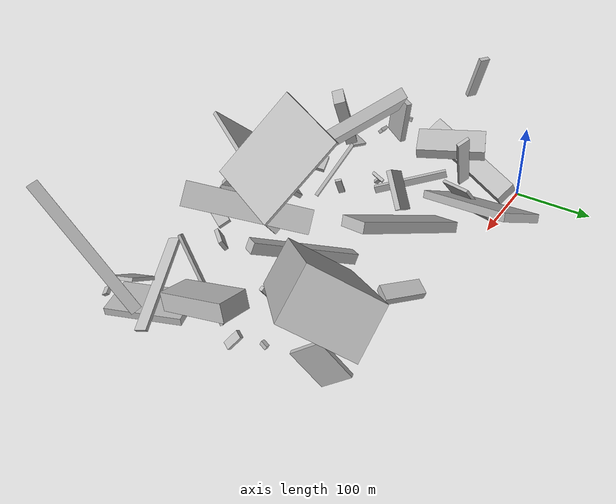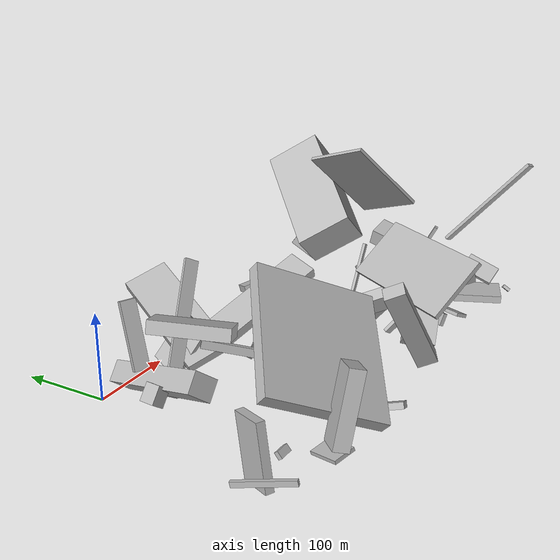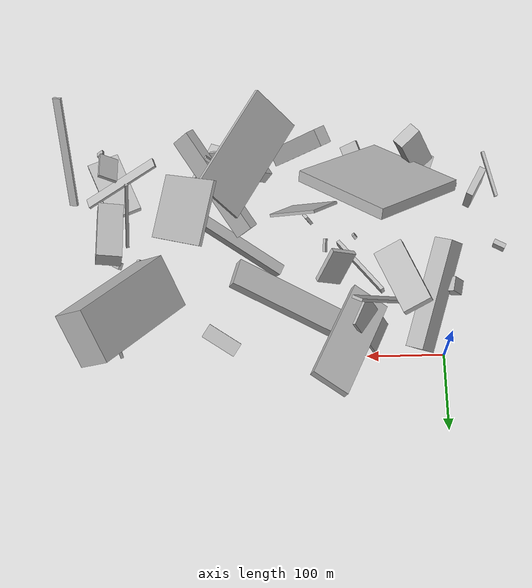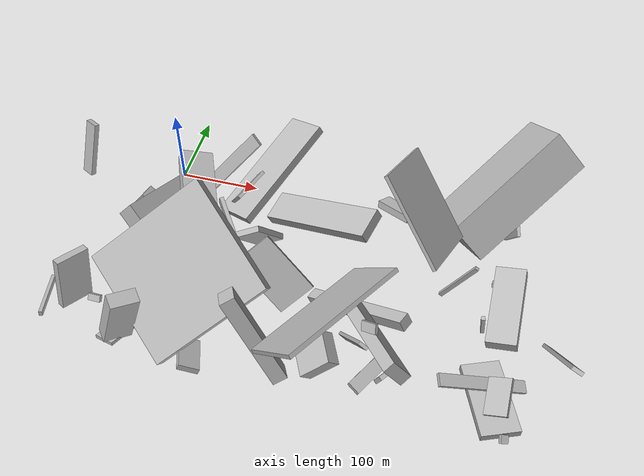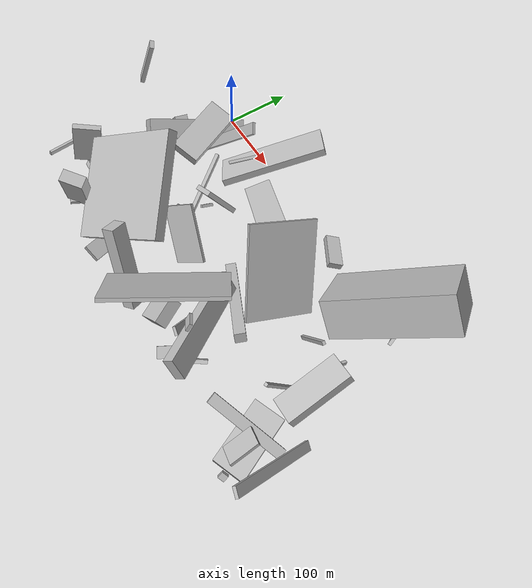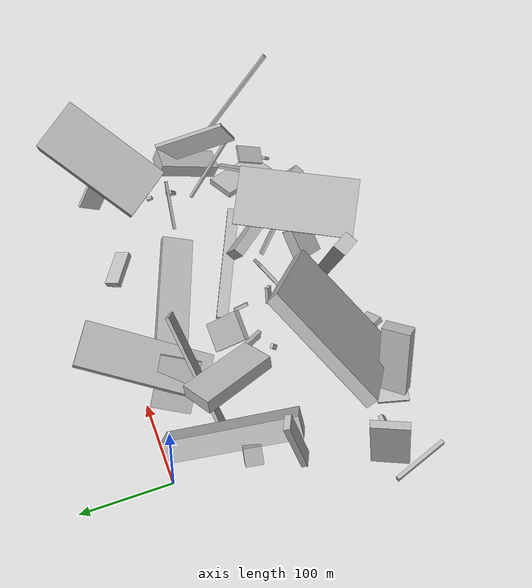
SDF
<sdf version="1.6">
 <world name="default">
  <model name="building_1">
   <static>0</static>
   <pose>274.08336194904683 -231.3044531886416 53.898716133199905 -2.457455952548785 -0.8422975858715522 -1.0340371913870465</pose>
   <link name="link">
    <gravity>0</gravity>
    <pose>0 0 5.5 0 0 0</pose>
    <collision name="collision"><geometry><box><size>90 4 11</size></box></geometry></collision>
    <visual name="visual">
     <cast_shadows>0</cast_shadows>
     <geometry><box><size>90 4 11</size></box></geometry>
     <material>
      <script>
       <uri>model://HANNAS_wall/materials/scripts</uri>
       <uri>model://HANNAS_wall/materials/textures</uri>
       <name>vrc/HANNAS_wall</name>
      </script>
     </material>
    </visual>
   </link>
  </model>
  <model name="building_3">
   <static>0</static>
   <pose>80.08499094555401 -218.43095466384744 86.9659670921636 -2.6320909215621855 -0.5577477662474117 0.6017697793955252</pose>
   <link name="link">
    <gravity>0</gravity>
    <pose>0 0 7.5 0 0 0</pose>
    <collision name="collision"><geometry><box><size>150 141 15</size></box></geometry></collision>
    <visual name="visual">
     <cast_shadows>0</cast_shadows>
     <geometry><box><size>150 141 15</size></box></geometry>
     <material>
      <script>
       <uri>model://HANNAS_wall/materials/scripts</uri>
       <uri>model://HANNAS_wall/materials/textures</uri>
       <name>vrc/HANNAS_wall</name>
      </script>
     </material>
    </visual>
   </link>
  </model>
  <model name="building_4">
   <static>0</static>
   <pose>145.41528860441622 -20.587483719087146 57.7970802302686 1.920596325432906 0.32876127654155946 -1.9970142179500487</pose>
   <link name="link">
    <gravity>0</gravity>
    <pose>0 0 26.0 0 0 0</pose>
    <collision name="collision"><geometry><box><size>150 10 52</size></box></geometry></collision>
    <visual name="visual">
     <cast_shadows>0</cast_shadows>
     <geometry><box><size>150 10 52</size></box></geometry>
     <material>
      <script>
       <uri>model://HANNAS_wall/materials/scripts</uri>
       <uri>model://HANNAS_wall/materials/textures</uri>
       <name>vrc/HANNAS_wall</name>
      </script>
     </material>
    </visual>
   </link>
  </model>
  <model name="building_6">
   <static>0</static>
   <pose>19.865893929443374 -69.70426269272771 46.12021494433607 2.770360227529504 0.6297020385792989 -0.5310943674529348</pose>
   <link name="link">
    <gravity>0</gravity>
    <pose>0 0 12.0 0 0 0</pose>
    <collision name="collision"><geometry><box><size>28 146 24</size></box></geometry></collision>
    <visual name="visual">
     <cast_shadows>0</cast_shadows>
     <geometry><box><size>28 146 24</size></box></geometry>
     <material>
      <script>
       <uri>model://HANNAS_wall/materials/scripts</uri>
       <uri>model://HANNAS_wall/materials/textures</uri>
       <name>vrc/HANNAS_wall</name>
      </script>
     </material>
    </visual>
   </link>
  </model>
  <model name="building_7">
   <static>0</static>
   <pose>-54.44621342415429 -217.31698436443335 37.67234238482524 1.5368183618049656 0.17303411228390025 1.0548668460821082</pose>
   <link name="link">
    <gravity>0</gravity>
    <pose>0 0 4.5 0 0 0</pose>
    <collision name="collision"><geometry><box><size>40 69 9</size></box></geometry></collision>
    <visual name="visual">
     <cast_shadows>0</cast_shadows>
     <geometry><box><size>40 69 9</size></box></geometry>
     <material>
      <script>
       <uri>model://HANNAS_wall/materials/scripts</uri>
       <uri>model://HANNAS_wall/materials/textures</uri>
       <name>vrc/HANNAS_wall</name>
      </script>
     </material>
    </visual>
   </link>
  </model>
  <model name="building_8">
   <static>0</static>
   <pose>422.3939463090747 -129.7312377022206 13.620527940322468 -0.8472602310120149 -0.38425053576496765 -1.9370526661152392</pose>
   <link name="link">
    <gravity>0</gravity>
    <pose>0 0 2.5 0 0 0</pose>
    <collision name="collision"><geometry><box><size>9 19 5</size></box></geometry></collision>
    <visual name="visual">
     <cast_shadows>0</cast_shadows>
     <geometry><box><size>9 19 5</size></box></geometry>
     <material>
      <script>
       <uri>model://HANNAS_wall/materials/scripts</uri>
       <uri>model://HANNAS_wall/materials/textures</uri>
       <name>vrc/HANNAS_wall</name>
      </script>
     </material>
    </visual>
   </link>
  </model>
  <model name="building_12">
   <static>0</static>
   <pose>297.28947264821716 -238.88031578540495 92.5011928798065 0.8032718598498589 0.8532472941142086 -1.3830883945449193</pose>
   <link name="link">
    <gravity>0</gravity>
    <pose>0 0 2.0 0 0 0</pose>
    <collision name="collision"><geometry><box><size>11 20 4</size></box></geometry></collision>
    <visual name="visual">
     <cast_shadows>0</cast_shadows>
     <geometry><box><size>11 20 4</size></box></geometry>
     <material>
      <script>
       <uri>model://HANNAS_wall/materials/scripts</uri>
       <uri>model://HANNAS_wall/materials/textures</uri>
       <name>vrc/HANNAS_wall</name>
      </script>
     </material>
    </visual>
   </link>
  </model>
  <model name="building_14">
   <static>0</static>
   <pose>430.7676538845626 -242.3820270538626 7.361293586594788 -0.005289562213808803 0.0005794806380247056 1.9600368883377455</pose>
   <link name="link">
    <gravity>0</gravity>
    <pose>0 0 4.5 0 0 0</pose>
    <collision name="collision"><geometry><box><size>86 43 9</size></box></geometry></collision>
    <visual name="visual">
     <cast_shadows>0</cast_shadows>
     <geometry><box><size>86 43 9</size></box></geometry>
     <material>
      <script>
       <uri>model://HANNAS_wall/materials/scripts</uri>
       <uri>model://HANNAS_wall/materials/textures</uri>
       <name>vrc/HANNAS_wall</name>
      </script>
     </material>
    </visual>
   </link>
  </model>
  <model name="building_15">
   <static>0</static>
   <pose>407.99949677170196 -179.98943815418508 57.117048858718064 2.0365546172570093 -0.19053455401960737 0.22067618689535806</pose>
   <link name="link">
    <gravity>0</gravity>
    <pose>0 0 2.0 0 0 0</pose>
    <collision name="collision"><geometry><box><size>4 104 4</size></box></geometry></collision>
    <visual name="visual">
     <cast_shadows>0</cast_shadows>
     <geometry><box><size>4 104 4</size></box></geometry>
     <material>
      <script>
       <uri>model://HANNAS_wall/materials/scripts</uri>
       <uri>model://HANNAS_wall/materials/textures</uri>
       <name>vrc/HANNAS_wall</name>
      </script>
     </material>
    </visual>
   </link>
  </model>
  <model name="building_16">
   <static>0</static>
   <pose>249.0970147552948 -250.61814000285818 37.25934520224389 -0.7869542360300087 -0.20158766296070735 2.0252548037783775</pose>
   <link name="link">
    <gravity>0</gravity>
    <pose>0 0 8.5 0 0 0</pose>
    <collision name="collision"><geometry><box><size>36 41 17</size></box></geometry></collision>
    <visual name="visual">
     <cast_shadows>0</cast_shadows>
     <geometry><box><size>36 41 17</size></box></geometry>
     <material>
      <script>
       <uri>model://HANNAS_wall/materials/scripts</uri>
       <uri>model://HANNAS_wall/materials/textures</uri>
       <name>vrc/HANNAS_wall</name>
      </script>
     </material>
    </visual>
   </link>
  </model>
  <model name="building_17">
   <static>0</static>
   <pose>392.4460119822413 -114.9322170357347 66.175404197433 -2.623463794112424 0.0328109910521698 1.4970156569229365</pose>
   <link name="link">
    <gravity>0</gravity>
    <pose>0 0 34.0 0 0 0</pose>
    <collision name="collision"><geometry><box><size>4 5 68</size></box></geometry></collision>
    <visual name="visual">
     <cast_shadows>0</cast_shadows>
     <geometry><box><size>4 5 68</size></box></geometry>
     <material>
      <script>
       <uri>model://HANNAS_wall/materials/scripts</uri>
       <uri>model://HANNAS_wall/materials/textures</uri>
       <name>vrc/HANNAS_wall</name>
      </script>
     </material>
    </visual>
   </link>
  </model>
  <model name="building_18">
   <static>0</static>
   <pose>201.0611110310721 -67.09205175069367 53.0205117535883 2.7296029171811362 -0.249352321656573 1.2996041504257405</pose>
   <link name="link">
    <gravity>0</gravity>
    <pose>0 0 6.5 0 0 0</pose>
    <collision name="collision"><geometry><box><size>38 150 13</size></box></geometry></collision>
    <visual name="visual">
     <cast_shadows>0</cast_shadows>
     <geometry><box><size>38 150 13</size></box></geometry>
     <material>
      <script>
       <uri>model://HANNAS_wall/materials/scripts</uri>
       <uri>model://HANNAS_wall/materials/textures</uri>
       <name>vrc/HANNAS_wall</name>
      </script>
     </material>
    </visual>
   </link>
  </model>
  <model name="building_19">
   <static>0</static>
   <pose>358.57546125411614 -161.20640690429445 136.25886200195367 0.7392676355149912 -0.32881226431772254 -1.8291653026473966</pose>
   <link name="link">
    <gravity>0</gravity>
    <pose>0 0 53.0 0 0 0</pose>
    <collision name="collision"><geometry><box><size>80 4 106</size></box></geometry></collision>
    <visual name="visual">
     <cast_shadows>0</cast_shadows>
     <geometry><box><size>80 4 106</size></box></geometry>
     <material>
      <script>
       <uri>model://HANNAS_wall/materials/scripts</uri>
       <uri>model://HANNAS_wall/materials/textures</uri>
       <name>vrc/HANNAS_wall</name>
      </script>
     </material>
    </visual>
   </link>
  </model>
  <model name="building_23">
   <static>0</static>
   <pose>-21.31158232379738 -234.0588153643131 20.963491100993476 -0.6748994985865159 -0.05399074404407798 -0.06755618627780735</pose>
   <link name="link">
    <gravity>0</gravity>
    <pose>0 0 4.0 0 0 0</pose>
    <collision name="collision"><geometry><box><size>15 5 8</size></box></geometry></collision>
    <visual name="visual">
     <cast_shadows>0</cast_shadows>
     <geometry><box><size>15 5 8</size></box></geometry>
     <material>
      <script>
       <uri>model://HANNAS_wall/materials/scripts</uri>
       <uri>model://HANNAS_wall/materials/textures</uri>
       <name>vrc/HANNAS_wall</name>
      </script>
     </material>
    </visual>
   </link>
  </model>
  <model name="building_24">
   <static>0</static>
   <pose>-65.65984551477288 -110.55022329372633 96.96367569065657 -0.3289868794215921 -0.024663614271463873 -0.5011507950057064</pose>
   <link name="link">
    <gravity>0</gravity>
    <pose>0 0 32.5 0 0 0</pose>
    <collision name="collision"><geometry><box><size>15 6 65</size></box></geometry></collision>
    <visual name="visual">
     <cast_shadows>0</cast_shadows>
     <geometry><box><size>15 6 65</size></box></geometry>
     <material>
      <script>
       <uri>model://HANNAS_wall/materials/scripts</uri>
       <uri>model://HANNAS_wall/materials/textures</uri>
       <name>vrc/HANNAS_wall</name>
      </script>
     </material>
    </visual>
   </link>
  </model>
  <model name="building_26">
   <static>0</static>
   <pose>362.6464835382992 -80.49664680190284 75.65442261401114 0.9604054517691684 0.5326375658199882 2.0527102020314643</pose>
   <link name="link">
    <gravity>0</gravity>
    <pose>0 0 75.0 0 0 0</pose>
    <collision name="collision"><geometry><box><size>71 50 150</size></box></geometry></collision>
    <visual name="visual">
     <cast_shadows>0</cast_shadows>
     <geometry><box><size>71 50 150</size></box></geometry>
     <material>
      <script>
       <uri>model://HANNAS_wall/materials/scripts</uri>
       <uri>model://HANNAS_wall/materials/textures</uri>
       <name>vrc/HANNAS_wall</name>
      </script>
     </material>
    </visual>
   </link>
  </model>
  <model name="building_27">
   <static>0</static>
   <pose>93.98537673149545 -33.52987266365763 32.24867948225883 2.174443550494991 -0.18765045476922337 1.1443223909083768</pose>
   <link name="link">
    <gravity>0</gravity>
    <pose>0 0 2.0 0 0 0</pose>
    <collision name="collision"><geometry><box><size>46 62 4</size></box></geometry></collision>
    <visual name="visual">
     <cast_shadows>0</cast_shadows>
     <geometry><box><size>46 62 4</size></box></geometry>
     <material>
      <script>
       <uri>model://HANNAS_wall/materials/scripts</uri>
       <uri>model://HANNAS_wall/materials/textures</uri>
       <name>vrc/HANNAS_wall</name>
      </script>
     </material>
    </visual>
   </link>
  </model>
  <model name="building_33">
   <static>0</static>
   <pose>174.43730273786815 -273.0040154805 70.71119166547038 1.171248893958179 0.3890111496381628 2.001457953230878</pose>
   <link name="link">
    <gravity>0</gravity>
    <pose>0 0 8.5 0 0 0</pose>
    <collision name="collision"><geometry><box><size>23 115 17</size></box></geometry></collision>
    <visual name="visual">
     <cast_shadows>0</cast_shadows>
     <geometry><box><size>23 115 17</size></box></geometry>
     <material>
      <script>
       <uri>model://HANNAS_wall/materials/scripts</uri>
       <uri>model://HANNAS_wall/materials/textures</uri>
       <name>vrc/HANNAS_wall</name>
      </script>
     </material>
    </visual>
   </link>
  </model>
  <model name="building_34">
   <static>0</static>
   <pose>174.70443697967426 -180.28618396553577 42.98360959568578 -1.3456014113958783 0.25375754705712306 0.6555595085936111</pose>
   <link name="link">
    <gravity>0</gravity>
    <pose>0 0 4.0 0 0 0</pose>
    <collision name="collision"><geometry><box><size>4 22 8</size></box></geometry></collision>
    <visual name="visual">
     <cast_shadows>0</cast_shadows>
     <geometry><box><size>4 22 8</size></box></geometry>
     <material>
      <script>
       <uri>model://HANNAS_wall/materials/scripts</uri>
       <uri>model://HANNAS_wall/materials/textures</uri>
       <name>vrc/HANNAS_wall</name>
      </script>
     </material>
    </visual>
   </link>
  </model>
  <model name="building_35">
   <static>0</static>
   <pose>287.6463219245517 -18.686155437978705 26.082095877138777 0.19029977042800977 -0.25745807984295027 -2.181668684803308</pose>
   <link name="link">
    <gravity>0</gravity>
    <pose>0 0 4.5 0 0 0</pose>
    <collision name="collision"><geometry><box><size>19 48 9</size></box></geometry></collision>
    <visual name="visual">
     <cast_shadows>0</cast_shadows>
     <geometry><box><size>19 48 9</size></box></geometry>
     <material>
      <script>
       <uri>model://HANNAS_wall/materials/scripts</uri>
       <uri>model://HANNAS_wall/materials/textures</uri>
       <name>vrc/HANNAS_wall</name>
      </script>
     </material>
    </visual>
   </link>
  </model>
  <model name="building_36">
   <static>0</static>
   <pose>328.56252215634305 -190.41109983469931 44.1378118274567 2.0636902166497957 0.08697609989186929 -1.9876330275423124</pose>
   <link name="link">
    <gravity>0</gravity>
    <pose>0 0 75.0 0 0 0</pose>
    <collision name="collision"><geometry><box><size>15 14 150</size></box></geometry></collision>
    <visual name="visual">
     <cast_shadows>0</cast_shadows>
     <geometry><box><size>15 14 150</size></box></geometry>
     <material>
      <script>
       <uri>model://HANNAS_wall/materials/scripts</uri>
       <uri>model://HANNAS_wall/materials/textures</uri>
       <name>vrc/HANNAS_wall</name>
      </script>
     </material>
    </visual>
   </link>
  </model>
  <model name="building_39">
   <static>0</static>
   <pose>150.38043814248343 -133.07683729706363 60.305425168416406 0.6849073111043166 0.3973705467041857 1.496411157688793</pose>
   <link name="link">
    <gravity>0</gravity>
    <pose>0 0 2.0 0 0 0</pose>
    <collision name="collision"><geometry><box><size>17 4 4</size></box></geometry></collision>
    <visual name="visual">
     <cast_shadows>0</cast_shadows>
     <geometry><box><size>17 4 4</size></box></geometry>
     <material>
      <script>
       <uri>model://HANNAS_wall/materials/scripts</uri>
       <uri>model://HANNAS_wall/materials/textures</uri>
       <name>vrc/HANNAS_wall</name>
      </script>
     </material>
    </visual>
   </link>
  </model>
  <model name="building_40">
   <static>0</static>
   <pose>421.4385371619959 -245.3893137881269 31.77283330015989 1.0173474694563736 1.0989209837809601 2.9491759488928992</pose>
   <link name="link">
    <gravity>0</gravity>
    <pose>0 0 7.0 0 0 0</pose>
    <collision name="collision"><geometry><box><size>4 108 14</size></box></geometry></collision>
    <visual name="visual">
     <cast_shadows>0</cast_shadows>
     <geometry><box><size>4 108 14</size></box></geometry>
     <material>
      <script>
       <uri>model://HANNAS_wall/materials/scripts</uri>
       <uri>model://HANNAS_wall/materials/textures</uri>
       <name>vrc/HANNAS_wall</name>
      </script>
     </material>
    </visual>
   </link>
  </model>
  <model name="building_43">
   <static>0</static>
   <pose>98.59739822492361 -253.6732783829276 13.989383264759583 -1.1497575204532353 1.0826131915128498 -2.4185771383463375</pose>
   <link name="link">
    <gravity>0</gravity>
    <pose>0 0 22.0 0 0 0</pose>
    <collision name="collision"><geometry><box><size>7 24 44</size></box></geometry></collision>
    <visual name="visual">
     <cast_shadows>0</cast_shadows>
     <geometry><box><size>7 24 44</size></box></geometry>
     <material>
      <script>
       <uri>model://HANNAS_wall/materials/scripts</uri>
       <uri>model://HANNAS_wall/materials/textures</uri>
       <name>vrc/HANNAS_wall</name>
      </script>
     </material>
    </visual>
   </link>
  </model>
  <model name="building_44">
   <static>0</static>
   <pose>17.942107835479568 -278.94122648247304 59.9600644059292 -2.2866552529870154 -1.2617296811599445 -0.15471854984224725</pose>
   <link name="link">
    <gravity>0</gravity>
    <pose>0 0 16.0 0 0 0</pose>
    <collision name="collision"><geometry><box><size>80 17 32</size></box></geometry></collision>
    <visual name="visual">
     <cast_shadows>0</cast_shadows>
     <geometry><box><size>80 17 32</size></box></geometry>
     <material>
      <script>
       <uri>model://HANNAS_wall/materials/scripts</uri>
       <uri>model://HANNAS_wall/materials/textures</uri>
       <name>vrc/HANNAS_wall</name>
      </script>
     </material>
    </visual>
   </link>
  </model>
  <model name="building_45">
   <static>0</static>
   <pose>288.7258245374752 -178.2387251953378 108.7413147347786 1.5527035082576184 -0.7377690070558928 -0.5270581127310426</pose>
   <link name="link">
    <gravity>0</gravity>
    <pose>0 0 75.0 0 0 0</pose>
    <collision name="collision"><geometry><box><size>74 5 150</size></box></geometry></collision>
    <visual name="visual">
     <cast_shadows>0</cast_shadows>
     <geometry><box><size>74 5 150</size></box></geometry>
     <material>
      <script>
       <uri>model://HANNAS_wall/materials/scripts</uri>
       <uri>model://HANNAS_wall/materials/textures</uri>
       <name>vrc/HANNAS_wall</name>
      </script>
     </material>
    </visual>
   </link>
  </model>
  <model name="building_53">
   <static>0</static>
   <pose>-20.07485737336057 -81.29681602752355 28.51370041996053 -0.6290435872845094 -0.09017543030467787 -1.768219855513095</pose>
   <link name="link">
    <gravity>0</gravity>
    <pose>0 0 10.0 0 0 0</pose>
    <collision name="collision"><geometry><box><size>19 15 20</size></box></geometry></collision>
    <visual name="visual">
     <cast_shadows>0</cast_shadows>
     <geometry><box><size>19 15 20</size></box></geometry>
     <material>
      <script>
       <uri>model://HANNAS_wall/materials/scripts</uri>
       <uri>model://HANNAS_wall/materials/textures</uri>
       <name>vrc/HANNAS_wall</name>
      </script>
     </material>
    </visual>
   </link>
  </model>
  <model name="building_54">
   <static>0</static>
   <pose>136.74663633508197 -107.53982350222702 43.5369164484583 -2.269634129408732 -0.8397894857272351 -2.224780079791047</pose>
   <link name="link">
    <gravity>0</gravity>
    <pose>0 0 3.5 0 0 0</pose>
    <collision name="collision"><geometry><box><size>51 35 7</size></box></geometry></collision>
    <visual name="visual">
     <cast_shadows>0</cast_shadows>
     <geometry><box><size>51 35 7</size></box></geometry>
     <material>
      <script>
       <uri>model://HANNAS_wall/materials/scripts</uri>
       <uri>model://HANNAS_wall/materials/textures</uri>
       <name>vrc/HANNAS_wall</name>
      </script>
     </material>
    </visual>
   </link>
  </model>
  <model name="building_57">
   <static>0</static>
   <pose>252.35769481836917 -163.29504860905618 40.78444495648646 -1.0817849646926914 -0.9018142685134825 -2.9365082511979055</pose>
   <link name="link">
    <gravity>0</gravity>
    <pose>0 0 75.0 0 0 0</pose>
    <collision name="collision"><geometry><box><size>30 14 150</size></box></geometry></collision>
    <visual name="visual">
     <cast_shadows>0</cast_shadows>
     <geometry><box><size>30 14 150</size></box></geometry>
     <material>
      <script>
       <uri>model://HANNAS_wall/materials/scripts</uri>
       <uri>model://HANNAS_wall/materials/textures</uri>
       <name>vrc/HANNAS_wall</name>
      </script>
     </material>
    </visual>
   </link>
  </model>
  <model name="building_59">
   <static>0</static>
   <pose>21.32981838770651 -247.58260286348212 11.390175982018736 1.3829129770853676 -0.1802999572865669 -0.3282775227253613</pose>
   <link name="link">
    <gravity>0</gravity>
    <pose>0 0 17.5 0 0 0</pose>
    <collision name="collision"><geometry><box><size>25 4 35</size></box></geometry></collision>
    <visual name="visual">
     <cast_shadows>0</cast_shadows>
     <geometry><box><size>25 4 35</size></box></geometry>
     <material>
      <script>
       <uri>model://HANNAS_wall/materials/scripts</uri>
       <uri>model://HANNAS_wall/materials/textures</uri>
       <name>vrc/HANNAS_wall</name>
      </script>
     </material>
    </visual>
   </link>
  </model>
  <model name="building_60">
   <static>0</static>
   <pose>421.6539123618618 -21.203699533738046 47.49542428598823 1.6171436002332507 -0.6268555721586717 1.8935440939506574</pose>
   <link name="link">
    <gravity>0</gravity>
    <pose>0 0 2.0 0 0 0</pose>
    <collision name="collision"><geometry><box><size>36 47 4</size></box></geometry></collision>
    <visual name="visual">
     <cast_shadows>0</cast_shadows>
     <geometry><box><size>36 47 4</size></box></geometry>
     <material>
      <script>
       <uri>model://HANNAS_wall/materials/scripts</uri>
       <uri>model://HANNAS_wall/materials/textures</uri>
       <name>vrc/HANNAS_wall</name>
      </script>
     </material>
    </visual>
   </link>
  </model>
  <model name="building_61">
   <static>0</static>
   <pose>109.22421925548866 -159.92125696609705 25.77931708004715 2.211525042474254 -0.8363408679210519 1.6600418629245084</pose>
   <link name="link">
    <gravity>0</gravity>
    <pose>0 0 2.0 0 0 0</pose>
    <collision name="collision"><geometry><box><size>8 6 4</size></box></geometry></collision>
    <visual name="visual">
     <cast_shadows>0</cast_shadows>
     <geometry><box><size>8 6 4</size></box></geometry>
     <material>
      <script>
       <uri>model://HANNAS_wall/materials/scripts</uri>
       <uri>model://HANNAS_wall/materials/textures</uri>
       <name>vrc/HANNAS_wall</name>
      </script>
     </material>
    </visual>
   </link>
  </model>
  <model name="building_62">
   <static>0</static>
   <pose>436.38604804613095 -275.7949536605838 37.375777457492255 1.173137813834884 0.48792944129898635 2.9643763663451494</pose>
   <link name="link">
    <gravity>0</gravity>
    <pose>0 0 20.0 0 0 0</pose>
    <collision name="collision"><geometry><box><size>26 4 40</size></box></geometry></collision>
    <visual name="visual">
     <cast_shadows>0</cast_shadows>
     <geometry><box><size>26 4 40</size></box></geometry>
     <material>
      <script>
       <uri>model://HANNAS_wall/materials/scripts</uri>
       <uri>model://HANNAS_wall/materials/textures</uri>
       <name>vrc/HANNAS_wall</name>
      </script>
     </material>
    </visual>
   </link>
  </model>
  <model name="building_64">
   <static>0</static>
   <pose>316.61421735717397 -245.4154377774465 16.131702551057963 -0.06485534788871758 0.4085327675480201 -0.6277295044259606</pose>
   <link name="link">
    <gravity>0</gravity>
    <pose>0 0 7.5 0 0 0</pose>
    <collision name="collision"><geometry><box><size>5 25 15</size></box></geometry></collision>
    <visual name="visual">
     <cast_shadows>0</cast_shadows>
     <geometry><box><size>5 25 15</size></box></geometry>
     <material>
      <script>
       <uri>model://HANNAS_wall/materials/scripts</uri>
       <uri>model://HANNAS_wall/materials/textures</uri>
       <name>vrc/HANNAS_wall</name>
      </script>
     </material>
    </visual>
   </link>
  </model>
  <model name="building_65">
   <static>0</static>
   <pose>206.22926294430505 -189.3119036296127 43.48379317629278 -0.6541450900115541 -0.6011124619446285 0.6432370907748797</pose>
   <link name="link">
    <gravity>0</gravity>
    <pose>0 0 38.5 0 0 0</pose>
    <collision name="collision"><geometry><box><size>47 4 77</size></box></geometry></collision>
    <visual name="visual">
     <cast_shadows>0</cast_shadows>
     <geometry><box><size>47 4 77</size></box></geometry>
     <material>
      <script>
       <uri>model://HANNAS_wall/materials/scripts</uri>
       <uri>model://HANNAS_wall/materials/textures</uri>
       <name>vrc/HANNAS_wall</name>
      </script>
     </material>
    </visual>
   </link>
  </model>
  <model name="building_67">
   <static>0</static>
   <pose>52.747216897460845 -80.56057268046214 72.36528626810201 -0.05807724802986744 -0.29358269254202096 -2.7342464083917806</pose>
   <link name="link">
    <gravity>0</gravity>
    <pose>0 0 7.5 0 0 0</pose>
    <collision name="collision"><geometry><box><size>39 88 15</size></box></geometry></collision>
    <visual name="visual">
     <cast_shadows>0</cast_shadows>
     <geometry><box><size>39 88 15</size></box></geometry>
     <material>
      <script>
       <uri>model://HANNAS_wall/materials/scripts</uri>
       <uri>model://HANNAS_wall/materials/textures</uri>
       <name>vrc/HANNAS_wall</name>
      </script>
     </material>
    </visual>
   </link>
  </model>
  <model name="building_72">
   <static>0</static>
   <pose>432.35227632808284 -153.00514245720586 50.34970447877643 0.3077483482781942 -0.18459593923539863 -0.034029936233988145</pose>
   <link name="link">
    <gravity>0</gravity>
    <pose>0 0 10.0 0 0 0</pose>
    <collision name="collision"><geometry><box><size>33 87 20</size></box></geometry></collision>
    <visual name="visual">
     <cast_shadows>0</cast_shadows>
     <geometry><box><size>33 87 20</size></box></geometry>
     <material>
      <script>
       <uri>model://HANNAS_wall/materials/scripts</uri>
       <uri>model://HANNAS_wall/materials/textures</uri>
       <name>vrc/HANNAS_wall</name>
      </script>
     </material>
    </visual>
   </link>
  </model>
  <model name="building_73">
   <static>0</static>
   <pose>77.43518494264214 -57.901082527785945 64.42554468565312 1.0409871386910747 -0.49602778901248845 -1.90464851943192</pose>
   <link name="link">
    <gravity>0</gravity>
    <pose>0 0 8.0 0 0 0</pose>
    <collision name="collision"><geometry><box><size>4 150 16</size></box></geometry></collision>
    <visual name="visual">
     <cast_shadows>0</cast_shadows>
     <geometry><box><size>4 150 16</size></box></geometry>
     <material>
      <script>
       <uri>model://HANNAS_wall/materials/scripts</uri>
       <uri>model://HANNAS_wall/materials/textures</uri>
       <name>vrc/HANNAS_wall</name>
      </script>
     </material>
    </visual>
   </link>
  </model>
  <model name="building_75">
   <static>0</static>
   <pose>-74.102799766382 -242.9678306266842 29.386221446039404 3.1276023074033974 -0.20129138788497944 -1.317805952835196</pose>
   <link name="link">
    <gravity>0</gravity>
    <pose>0 0 3.0 0 0 0</pose>
    <collision name="collision"><geometry><box><size>63 4 6</size></box></geometry></collision>
    <visual name="visual">
     <cast_shadows>0</cast_shadows>
     <geometry><box><size>63 4 6</size></box></geometry>
     <material>
      <script>
       <uri>model://HANNAS_wall/materials/scripts</uri>
       <uri>model://HANNAS_wall/materials/textures</uri>
       <name>vrc/HANNAS_wall</name>
      </script>
     </material>
    </visual>
   </link>
  </model>
  <model name="building_78">
   <static>0</static>
   <pose>311.8434414266169 -244.9591722014009 41.69981039358425 -1.4896102222973027 -0.38527380860782956 2.6447424889224163</pose>
   <link name="link">
    <gravity>0</gravity>
    <pose>0 0 23.0 0 0 0</pose>
    <collision name="collision"><geometry><box><size>15 4 46</size></box></geometry></collision>
    <visual name="visual">
     <cast_shadows>0</cast_shadows>
     <geometry><box><size>15 4 46</size></box></geometry>
     <material>
      <script>
       <uri>model://HANNAS_wall/materials/scripts</uri>
       <uri>model://HANNAS_wall/materials/textures</uri>
       <name>vrc/HANNAS_wall</name>
      </script>
     </material>
    </visual>
   </link>
  </model>
  <model name="building_80">
   <static>0</static>
   <pose>132.5076458724929 -149.324780091386 26.784456710399716 0.1934413780610271 1.3238325951203629 2.3770217164823957</pose>
   <link name="link">
    <gravity>0</gravity>
    <pose>0 0 48.0 0 0 0</pose>
    <collision name="collision"><geometry><box><size>10 5 96</size></box></geometry></collision>
    <visual name="visual">
     <cast_shadows>0</cast_shadows>
     <geometry><box><size>10 5 96</size></box></geometry>
     <material>
      <script>
       <uri>model://HANNAS_wall/materials/scripts</uri>
       <uri>model://HANNAS_wall/materials/textures</uri>
       <name>vrc/HANNAS_wall</name>
      </script>
     </material>
    </visual>
   </link>
  </model>
  <model name="building_81">
   <static>0</static>
   <pose>415.9727611517952 -99.3753818145307 22.755917615891754 -1.964172946133517 -0.2444258080485156 -0.03819009851889708</pose>
   <link name="link">
    <gravity>0</gravity>
    <pose>0 0 4.0 0 0 0</pose>
    <collision name="collision"><geometry><box><size>4 5 8</size></box></geometry></collision>
    <visual name="visual">
     <cast_shadows>0</cast_shadows>
     <geometry><box><size>4 5 8</size></box></geometry>
     <material>
      <script>
       <uri>model://HANNAS_wall/materials/scripts</uri>
       <uri>model://HANNAS_wall/materials/textures</uri>
       <name>vrc/HANNAS_wall</name>
      </script>
     </material>
    </visual>
   </link>
  </model>
  <model name="building_84">
   <static>0</static>
   <pose>448.2435646041338 -288.3939946794902 18.29714484479726 0.6584797055437425 0.39033009024366044 0.44421344341927643</pose>
   <link name="link">
    <gravity>0</gravity>
    <pose>0 0 2.0 0 0 0</pose>
    <collision name="collision"><geometry><box><size>9 9 4</size></box></geometry></collision>
    <visual name="visual">
     <cast_shadows>0</cast_shadows>
     <geometry><box><size>9 9 4</size></box></geometry>
     <material>
      <script>
       <uri>model://HANNAS_wall/materials/scripts</uri>
       <uri>model://HANNAS_wall/materials/textures</uri>
       <name>vrc/HANNAS_wall</name>
      </script>
     </material>
    </visual>
   </link>
  </model>
  <model name="building_86">
   <static>0</static>
   <pose>476.7538887812356 -196.96354414139762 61.68807606415765 -0.3787228282470771 0.6251172188888557 -2.0767371108837165</pose>
   <link name="link">
    <gravity>0</gravity>
    <pose>0 0 75.0 0 0 0</pose>
    <collision name="collision"><geometry><box><size>4 11 150</size></box></geometry></collision>
    <visual name="visual">
     <cast_shadows>0</cast_shadows>
     <geometry><box><size>4 11 150</size></box></geometry>
     <material>
      <script>
       <uri>model://HANNAS_wall/materials/scripts</uri>
       <uri>model://HANNAS_wall/materials/textures</uri>
       <name>vrc/HANNAS_wall</name>
      </script>
     </material>
    </visual>
   </link>
  </model>
 </world>
</sdf>
